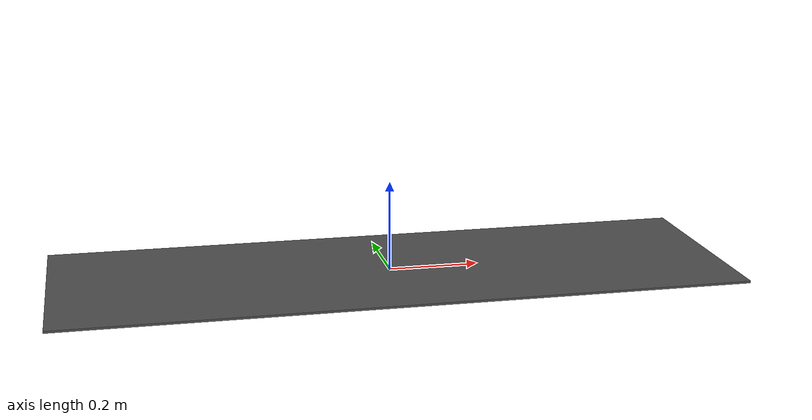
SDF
<?xml version="1.0" ?>
<sdf version="1.4">
  <model name="road_plane_3">
    <static>true</static>
    <link name="link">
      <collision name="collision">
        <geometry>
          <box>
            <size>1.5 0.5 0.005</size>
          </box>
        </geometry>
      </collision>
      <visual name="visual">
        <cast_shadows>false</cast_shadows>
        <geometry>
          <box>
            <size>1.5 0.5 0.005</size>
          </box>
        </geometry>
        <material>
          <script>
            <uri>model://road_plane_3/materials/scripts</uri>
            <uri>model://road_plane_3/materials/textures</uri>
            <name>vrc/road3</name>
          </script>
        </material>
      </visual>
    </link>
  </model>
</sdf>
